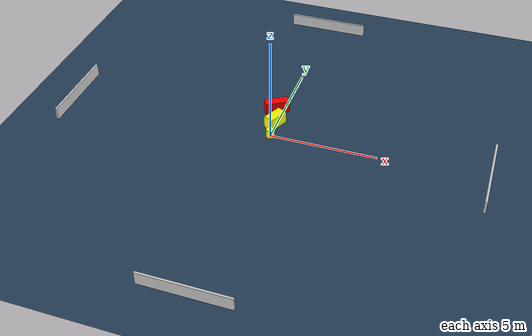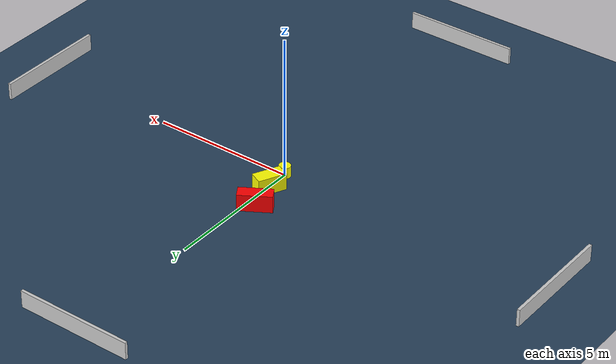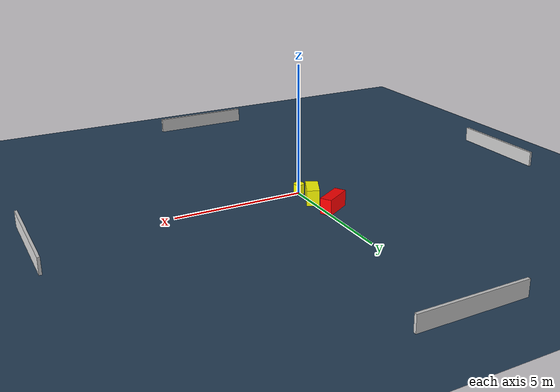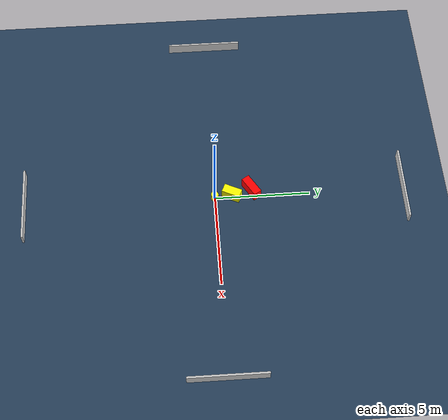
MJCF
<?xml version="1.0" ?>
<mujoco model="generated_environment">
  <option timestep="0.01" integrator="RK4" cone="elliptic"/>
  <default>
    <geom density="1"/>
  </default>
  <asset>
    <texture builtin="gradient" height="3072" name="skybox" rgb1="0.3 0.5 0.7" rgb2="0 0 0" type="skybox" width="512"/>
    <texture builtin="checker" height="300" name="groundplane" rgb1="0.2 0.3 0.4" rgb2="0.1 0.2 0.3" type="2d" width="300"/>
    <material name="groundplane" reflectance="0.2" texrepeat="5 5" texture="groundplane"/>
  </asset>
  <worldbody>
    <light dir="0 0 -1" directional="true" pos="0 0 1.5"/>
    <geom condim="3" friction="0.5 0.005 0.001" material="groundplane" name="floor" pos="0 0 0" size="0 0 0.05" type="plane"/>
    <body name="walls">
      <geom name="wall_1" condim="4" pos="-10.0 0.0 0.3" rgba="0.800000011920929 0.800000011920929 0.800000011920929 1.0" size="0.05 2.0 0.3" type="box"/>
      <geom name="wall_2" condim="4" pos="10.0 0.0 0.3" rgba="0.800000011920929 0.800000011920929 0.800000011920929 1.0" size="0.05 2.0 0.3" type="box"/>
      <geom name="wall_3" condim="4" pos="0.0 -10.0 0.3" rgba="0.800000011920929 0.800000011920929 0.800000011920929 1.0" size="2.0 0.05 0.3" type="box"/>
      <geom name="wall_4" condim="4" pos="0.0 10.0 0.3" rgba="0.800000011920929 0.800000011920929 0.800000011920929 1.0" size="2.0 0.05 0.3" type="box"/>
    </body>
    <body name="robot">
      <joint name="joint_x" type="slide" pos="0 0 0" axis="1 0 0"/>
      <joint name="joint_y" type="slide" pos="0 0 0" axis="0 1 0"/>
      <geom name="robot" type="cylinder" pos="0.0 0.0 0.2" size="0.2 0.2 0.0" mass="5.0" friction="1.0 0.005 0.0001" condim="4" rgba="1.0 1.0 0.0 1.0"/>
    </body>
    <body name="obstacle_1_movable">
      <geom name="obstacle_1_movable" condim="4" pos="-0.07587791534677932 0.9107891414862018 0.3" euler="0 0 64.50735757619195" friction="0.0 0.005 0.001" rgba="1.0 1.0 0.0 1.0" size="0.48502140995239745 0.2385660212270278 0.3" type="box" mass="0.1"/>
      <joint type="free"/>
    </body>
    <body name="obstacle_2_static">
      <geom name="obstacle_2_static" condim="4" pos="-0.34122905860858355 1.958874649319351 0.3" euler="0 0 211.5388659481939" friction="0.0 0.005 0.001" rgba="1.0 0.0 0.0 1.0" size="0.5702993212052929 0.22133952436517126 0.3" type="box"/>
    </body>
  </worldbody>
  <actuator>
    <motor name="actuator_x" joint="joint_x" gear="1" ctrlrange="-1 1"/>
    <motor name="actuator_y" joint="joint_y" gear="1" ctrlrange="-1 1"/>
  </actuator>
</mujoco>
